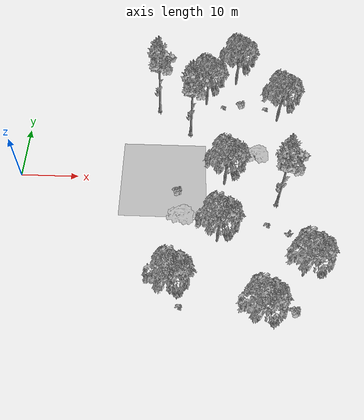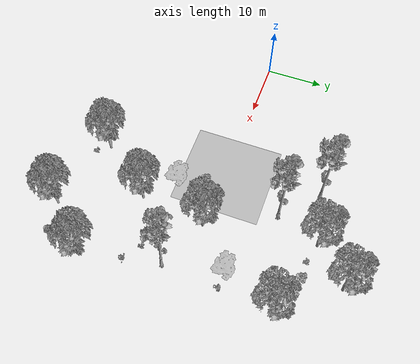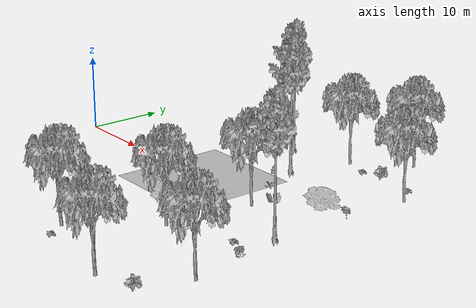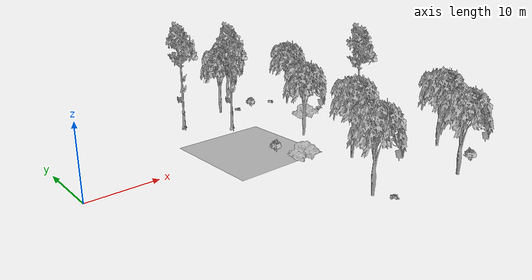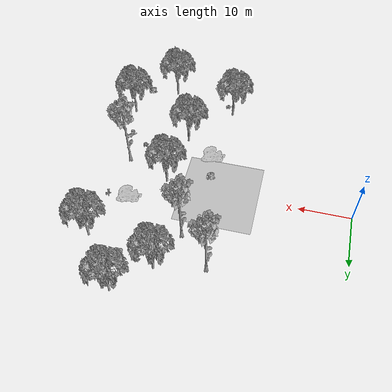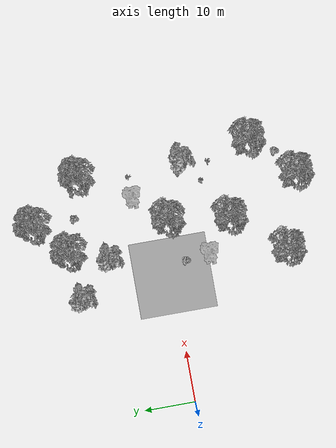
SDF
<sdf version="1.7">
 <world name="default">
  <model name="ground_plane">
   <static>1</static>
   <link name="link">
    <collision name="collision">
     <pose>25.0 0 0 0 -0 0</pose>
     <geometry><plane><normal>0 0 1</normal><size>50 50</size></plane></geometry>
     <surface><contact><ode><min_depth>0.01</min_depth><max_vel>0</max_vel></ode></contact></surface>
    </collision>
    <visual name="grass">
     <pose>25.0 0 0 0 -0 0</pose>
     <cast_shadows>0</cast_shadows>
     <geometry>
      <mesh>
       <scale>0.2731578947368421 0.2802702702702703 0.1</scale>
       <uri>file://grass_plane/meshes/grass_plane.dae</uri>
      </mesh>
     </geometry>
    </visual>
   </link>
  </model>
  <model name="Tree 1">
   <static>1</static>
   <pose>32.538028833864075 17.8504971903371 0 1.57079 -0 0</pose>
   <link name="link">
    <collision name="collision">
     <geometry><mesh><scale>3.5 5 3.5</scale><uri>model://tree_2/meshes/tree_2.obj</uri></mesh></geometry>
    </collision>
    <visual name="visual">
     <geometry><mesh><scale>3.5 5 3.5</scale><uri>model://tree_2/meshes/tree_2.obj</uri></mesh></geometry>
    </visual>
   </link>
  </model>
  <model name="Tree 3">
   <static>1</static>
   <pose>44.288028833864075 -4.371725031885131 0 1.57079 -0 0</pose>
   <link name="link">
    <collision name="collision">
     <geometry><mesh><scale>3.5 5 3.5</scale><uri>model://tree_9/meshes/tree_9.obj</uri></mesh></geometry>
    </collision>
    <visual name="visual">
     <geometry><mesh><scale>3.5 5 3.5</scale><uri>model://tree_9/meshes/tree_9.obj</uri></mesh></geometry>
    </visual>
   </link>
  </model>
  <model name="Tree 5">
   <static>1</static>
   <pose>26.663028833864075 -21.038391698551784 0 1.57079 -0 0</pose>
   <link name="link">
    <collision name="collision">
     <geometry><mesh><scale>3.5 5 3.5</scale><uri>model://tree_2/meshes/tree_2.obj</uri></mesh></geometry>
    </collision>
    <visual name="visual">
     <geometry><mesh><scale>3.5 5 3.5</scale><uri>model://tree_2/meshes/tree_2.obj</uri></mesh></geometry>
    </visual>
   </link>
  </model>
  <model name="Tree 7">
   <static>1</static>
   <pose>38.413028833864075 23.40605274589266 0 1.57079 -0 0</pose>
   <link name="link">
    <collision name="collision">
     <geometry><mesh><scale>3.5 5 3.5</scale><uri>model://tree_2/meshes/tree_2.obj</uri></mesh></geometry>
    </collision>
    <visual name="visual">
     <geometry><mesh><scale>3.5 5 3.5</scale><uri>model://tree_2/meshes/tree_2.obj</uri></mesh></geometry>
    </visual>
   </link>
  </model>
  <model name="Tree 9">
   <static>1</static>
   <pose>35.475528833864075 -0.6680213281814247 0 1.57079 -0 0</pose>
   <link name="link">
    <collision name="collision">
     <geometry><mesh><scale>3.5 5 3.5</scale><uri>model://tree_2/meshes/tree_2.obj</uri></mesh></geometry>
    </collision>
    <visual name="visual">
     <geometry><mesh><scale>3.5 5 3.5</scale><uri>model://tree_2/meshes/tree_2.obj</uri></mesh></geometry>
    </visual>
   </link>
  </model>
  <model name="Tree 10">
   <static>1</static>
   <pose>23.725528833864075 15.998645338485247 0 1.57079 -0 0</pose>
   <link name="link">
    <collision name="collision">
     <geometry><mesh><scale>3.5 5 3.5</scale><uri>model://tree_9/meshes/tree_9.obj</uri></mesh></geometry>
    </collision>
    <visual name="visual">
     <geometry><mesh><scale>3.5 5 3.5</scale><uri>model://tree_9/meshes/tree_9.obj</uri></mesh></geometry>
    </visual>
   </link>
  </model>
  <model name="Tree 11">
   <static>1</static>
   <pose>47.225528833864075 -17.334687994848082 0 1.57079 -0 0</pose>
   <link name="link">
    <collision name="collision">
     <geometry><mesh><scale>3.5 5 3.5</scale><uri>model://tree_2/meshes/tree_2.obj</uri></mesh></geometry>
    </collision>
    <visual name="visual">
     <geometry><mesh><scale>3.5 5 3.5</scale><uri>model://tree_2/meshes/tree_2.obj</uri></mesh></geometry>
    </visual>
   </link>
  </model>
  <model name="Tree 13">
   <static>1</static>
   <pose>29.600528833864075 10.443089782929697 0 1.57079 -0 0</pose>
   <link name="link">
    <collision name="collision">
     <geometry><mesh><scale>3.5 5 3.5</scale><uri>model://tree_9/meshes/tree_9.obj</uri></mesh></geometry>
    </collision>
    <visual name="visual">
     <geometry><mesh><scale>3.5 5 3.5</scale><uri>model://tree_9/meshes/tree_9.obj</uri></mesh></geometry>
    </visual>
   </link>
  </model>
  <model name="Tree 15">
   <static>1</static>
   <pose>41.350528833864075 4.88753422737414 0 1.57079 -0 0</pose>
   <link name="link">
    <collision name="collision">
     <geometry><mesh><scale>3 2 3</scale><uri>model://tree_3/meshes/tree_3.obj</uri></mesh></geometry>
    </collision>
    <visual name="visual">
     <geometry><mesh><scale>3 2 3</scale><uri>model://tree_3/meshes/tree_3.obj</uri></mesh></geometry>
    </visual>
   </link>
  </model>
  <model name="Tree 17">
   <static>1</static>
   <pose>34.006778833864075 -11.779132439292535 0 1.57079 -0 0</pose>
   <link name="link">
    <collision name="collision">
     <geometry><mesh><scale>3.5 5 3.5</scale><uri>model://tree_2/meshes/tree_2.obj</uri></mesh></geometry>
    </collision>
    <visual name="visual">
     <geometry><mesh><scale>3.5 5 3.5</scale><uri>model://tree_2/meshes/tree_2.obj</uri></mesh></geometry>
    </visual>
   </link>
  </model>
  <model name="Tree 19">
   <static>1</static>
   <pose>45.756778833864075 14.146793486633399 0 1.57079 -0 0</pose>
   <link name="link">
    <collision name="collision">
     <geometry><mesh><scale>3.5 5 3.5</scale><uri>model://tree_2/meshes/tree_2.obj</uri></mesh></geometry>
    </collision>
    <visual name="visual">
     <geometry><mesh><scale>3.5 5 3.5</scale><uri>model://tree_2/meshes/tree_2.obj</uri></mesh></geometry>
    </visual>
   </link>
  </model>
  <model name="Tree 21">
   <static>1</static>
   <pose>28.131778833864075 -8.075428735588833 0 1.57079 -0 0</pose>
   <link name="link">
    <collision name="collision">
     <geometry><mesh><scale>3 2 3</scale><uri>model://tree_3/meshes/tree_3.obj</uri></mesh></geometry>
    </collision>
    <visual name="visual">
     <geometry><mesh><scale>3 2 3</scale><uri>model://tree_3/meshes/tree_3.obj</uri></mesh></geometry>
    </visual>
   </link>
  </model>
  <model name="Tree 23">
   <static>1</static>
   <pose>39.881778833864075 -24.742095402255487 0 1.57079 -0 0</pose>
   <link name="link">
    <collision name="collision">
     <geometry><mesh><scale>3.5 5 3.5</scale><uri>model://tree_2/meshes/tree_2.obj</uri></mesh></geometry>
    </collision>
    <visual name="visual">
     <geometry><mesh><scale>3.5 5 3.5</scale><uri>model://tree_2/meshes/tree_2.obj</uri></mesh></geometry>
    </visual>
   </link>
  </model>
  <model name="Bush 1">
   <static>1</static>
   <pose>43.83702751319462 16.757509052010946 0 1.57079 -0 0</pose>
   <link name="link">
    <collision name="collision">
     <geometry><mesh><scale>2 2 2</scale><uri>model://bush_2/meshes/bush_2.obj</uri></mesh></geometry>
     <surface><contact><collide_without_contact>false</collide_without_contact></contact></surface>
    </collision>
    <visual name="visual">
     <geometry><mesh><scale>2 2 2</scale><uri>model://bush_2/meshes/bush_2.obj</uri></mesh></geometry>
    </visual>
   </link>
  </model>
  <model name="Bush 4">
   <static>1</static>
   <pose>35.866238479317964 16.916794401070078 0 1.57079 -0 0</pose>
   <link name="link">
    <collision name="collision">
     <geometry><mesh><scale>2 2 2</scale><uri>model://bush_2/meshes/bush_2.obj</uri></mesh></geometry>
     <surface><contact><collide_without_contact>false</collide_without_contact></contact></surface>
    </collision>
    <visual name="visual">
     <geometry><mesh><scale>2 2 2</scale><uri>model://bush_2/meshes/bush_2.obj</uri></mesh></geometry>
    </visual>
   </link>
  </model>
  <model name="Bush 5">
   <static>1</static>
   <pose>39.06528149035513 16.83947394034152 0 1.57079 -0 0</pose>
   <link name="link">
    <collision name="collision">
     <geometry><mesh><scale>2 2 2</scale><uri>model://bush_1/meshes/bush_1.obj</uri></mesh></geometry>
     <surface><contact><collide_without_contact>false</collide_without_contact></contact></surface>
    </collision>
    <visual name="visual">
     <geometry><mesh><scale>2 2 2</scale><uri>model://bush_1/meshes/bush_1.obj</uri></mesh></geometry>
    </visual>
   </link>
  </model>
  <model name="Bush 6">
   <static>1</static>
   <pose>27.39650820682236 -3.1463889101966664 0 1.57079 -0 0</pose>
   <link name="link">
    <collision name="collision">
     <geometry><mesh><scale>2 2 2</scale><uri>model://bush_1/meshes/bush_1.obj</uri></mesh></geometry>
     <surface><contact><collide_without_contact>false</collide_without_contact></contact></surface>
    </collision>
    <visual name="visual">
     <geometry><mesh><scale>2 2 2</scale><uri>model://bush_1/meshes/bush_1.obj</uri></mesh></geometry>
    </visual>
   </link>
  </model>
  <model name="Bush 9">
   <static>1</static>
   <pose>28.094752868241315 -23.173338068199513 0 1.57079 -0 0</pose>
   <link name="link">
    <collision name="collision">
     <geometry><mesh><scale>2 2 2</scale><uri>model://bush_2/meshes/bush_2.obj</uri></mesh></geometry>
     <surface><contact><collide_without_contact>false</collide_without_contact></contact></surface>
    </collision>
    <visual name="visual">
     <geometry><mesh><scale>2 2 2</scale><uri>model://bush_2/meshes/bush_2.obj</uri></mesh></geometry>
    </visual>
   </link>
  </model>
  <model name="Bush 11">
   <static>1</static>
   <pose>45.318882363349005 5.4347511877873345 0 1.57079 -0 0</pose>
   <link name="link">
    <collision name="collision">
     <geometry><mesh><scale>2 2 2</scale><uri>model://bush_5/meshes/bush_5.obj</uri></mesh></geometry>
     <surface><contact><collide_without_contact>false</collide_without_contact></contact></surface>
    </collision>
    <visual name="visual">
     <geometry><mesh><scale>2 2 2</scale><uri>model://bush_5/meshes/bush_5.obj</uri></mesh></geometry>
    </visual>
   </link>
  </model>
  <model name="Bush 14">
   <static>1</static>
   <pose>45.36552392771311 -23.72395705396636 0 1.57079 -0 0</pose>
   <link name="link">
    <collision name="collision">
     <geometry><mesh><scale>2 2 2</scale><uri>model://bush_1/meshes/bush_1.obj</uri></mesh></geometry>
     <surface><contact><collide_without_contact>false</collide_without_contact></contact></surface>
    </collision>
    <visual name="visual">
     <geometry><mesh><scale>2 2 2</scale><uri>model://bush_1/meshes/bush_1.obj</uri></mesh></geometry>
    </visual>
   </link>
  </model>
  <model name="Bush 15">
   <static>1</static>
   <pose>42.37284571735596 -8.644655803416107 0 1.57079 -0 0</pose>
   <link name="link">
    <collision name="collision">
     <geometry><mesh><scale>2 2 2</scale><uri>model://bush_2/meshes/bush_2.obj</uri></mesh></geometry>
     <surface><contact><collide_without_contact>false</collide_without_contact></contact></surface>
    </collision>
    <visual name="visual">
     <geometry><mesh><scale>2 2 2</scale><uri>model://bush_2/meshes/bush_2.obj</uri></mesh></geometry>
    </visual>
   </link>
  </model>
  <model name="Bush 17">
   <static>1</static>
   <pose>45.70874325890813 -10.567462032385889 0 1.57079 -0 0</pose>
   <link name="link">
    <collision name="collision">
     <geometry><mesh><scale>2 2 2</scale><uri>model://bush_4/meshes/bush_4.obj</uri></mesh></geometry>
     <surface><contact><collide_without_contact>false</collide_without_contact></contact></surface>
    </collision>
    <visual name="visual">
     <geometry><mesh><scale>2 2 2</scale><uri>model://bush_4/meshes/bush_4.obj</uri></mesh></geometry>
    </visual>
   </link>
  </model>
 </world>
</sdf>
